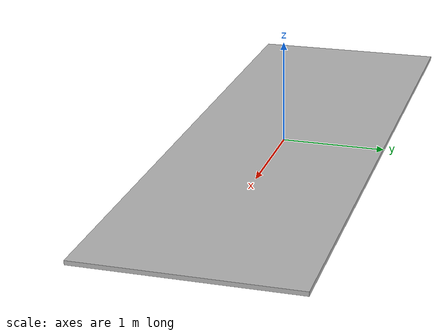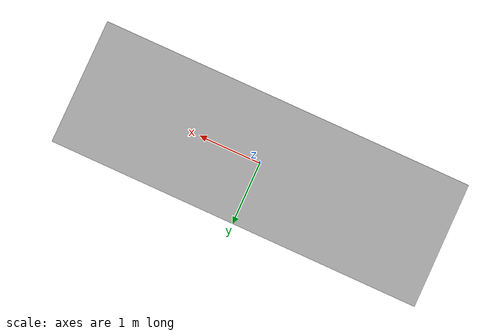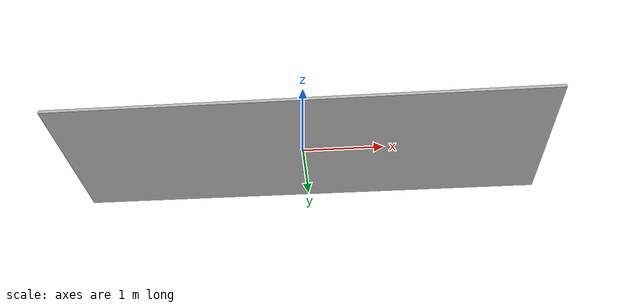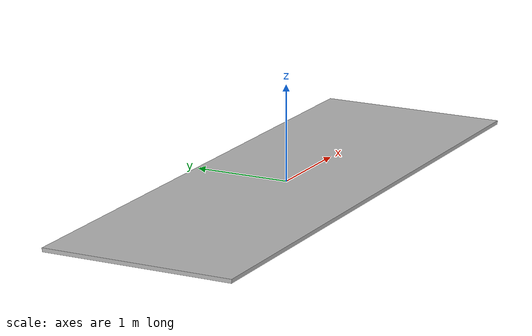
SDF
<?xml  version="1.0" ?>
<sdf version="1.5">

 <model name='aruco_box'>
        <static>true</static>
      <pose>0 0 0 0 -0 0</pose>
      <link name='link'>
        <inertial>
          <mass>1</mass>
          <inertia>
            <ixx>0.166667</ixx>
            <ixy>0</ixy>
            <ixz>0</ixz>
            <iyy>0.166667</iyy>
            <iyz>0</iyz>
            <izz>0.166667</izz>
          </inertia>
          <pose>0 0 0 0 -0 0</pose>
        </inertial>
        <collision name='collision'>
          <geometry>
            <box>
              <size>2 2 0.02</size>
            </box>
          </geometry>
          <surface>
            <contact>
              <ode/>
            </contact>
            <bounce/>
            <friction>
              <torsional>
                <ode/>
              </torsional>
              <ode/>
            </friction>
          </surface>
          <max_contacts>10</max_contacts>
        </collision>
        <visual name='aruco_box_mesh'>
          <geometry>
            <mesh>
                <uri>model://aruco_box/chessboard3m.dae</uri>
                <scale>1 1 0.02</scale>
            </mesh>
          </geometry>
        </visual>
        <self_collide>0</self_collide>
        <enable_wind>0</enable_wind>
        <kinematic>0</kinematic>
      </link>
    </model>
    </sdf>
